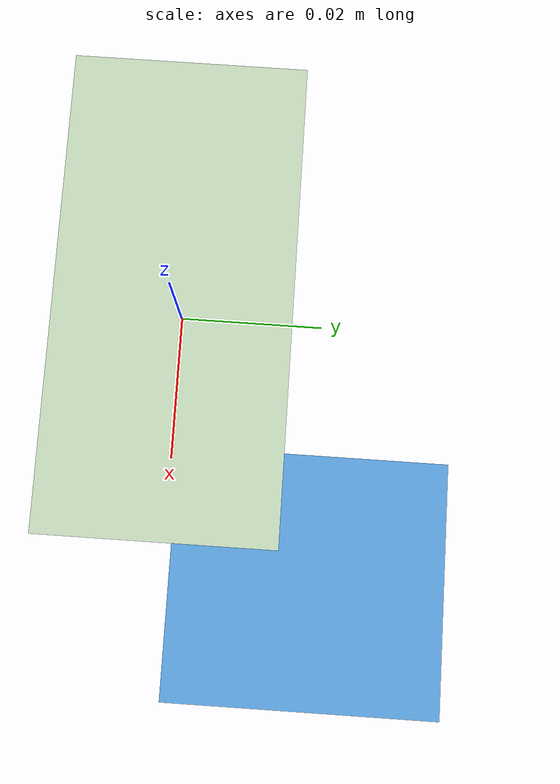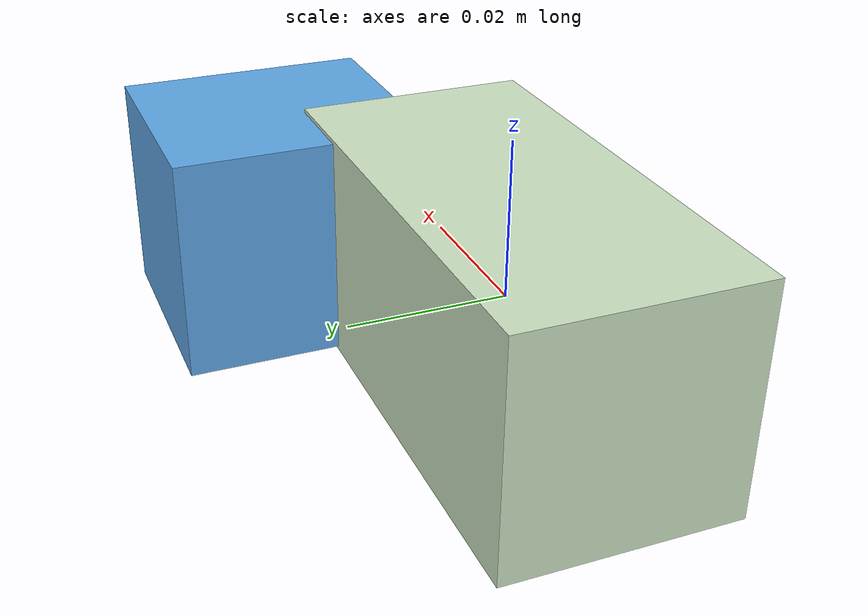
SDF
<sdf version="1.4"><world name="default"><model name="object0"><link name="link1"><pose>0 0 0 0 0 0</pose><inertial><pose>0 0 0 0 0 0</pose><mass>0.03296429863650709</mass><inertia><ixx>4.944644795476063e-06</ixx><ixy>0</ixy><iyy>1.2709087882452351e-05</iyy><ixz>0</ixz><iyz>0</iyz><izz>1.2709087882452351e-05</izz></inertia></inertial><visual name="link1_visual"><pose>0 0  0 0 0 0</pose><geometry><box><size>0.061044997475013144 0.03 0.03</size></box></geometry><material><diffuse>0.8014760705562525 0.8909836137780474 0.7649223054365308 1</diffuse></material></visual><collision><pose>0 0  0 0 0 0</pose><geometry><box><size>0.061044997475013144 0.03 0.03</size></box></geometry></collision></link><link name="link2"><pose>0.03391764906667019 0.018562277733063407 0 0 0 0</pose><inertial><pose>0 0 0 0 0 0</pose><mass>0.017749760726241223</mass><inertia><ixx>2.842080030017998e-06</ixx><ixy>0</ixy><iyy>2.5751944520321637e-06</iyy><ixz>0</ixz><iyz>0</iyz><izz>2.929349686922017e-06</izz></inertia></inertial><visual name="link2_visual"><pose>0 0  0 0 0 0</pose><geometry><box><size>0.03 0.03286992727081708 0.028999999999999998</size></box></geometry><material><diffuse>0.37169252626045535 0.6564323586600065 0.9034454225769184 1</diffuse></material></visual><collision><pose>0 0  0 0 0 0</pose><geometry><box><size>0.03 0.03286992727081708 0.028999999999999998</size></box></geometry></collision></link><joint name="link_joint_0" type="fixed"><parent>link1</parent><child>link2</child><pose>0 0 0 0 0 0</pose><axis><xyz>0 0 1</xyz></axis></joint></model></world></sdf>
